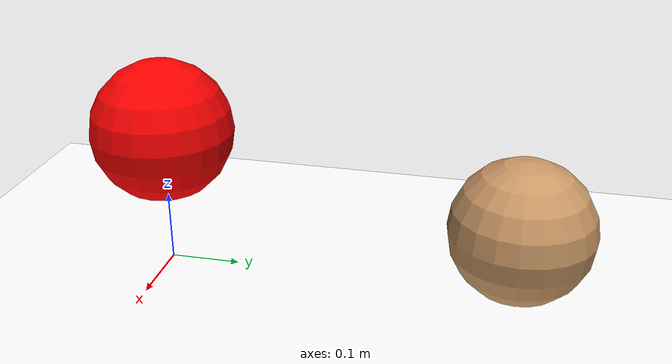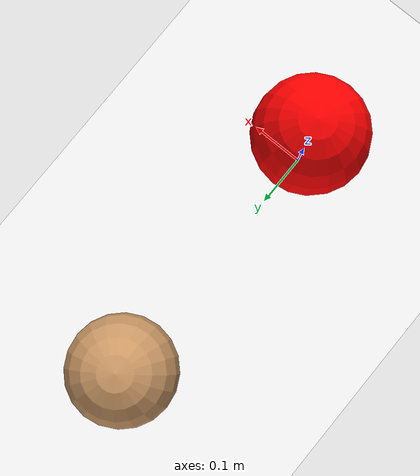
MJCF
<mujoco>
  <compiler inertiafromgeom="true" angle="degree" coordinate="local" />
  <option timestep="0.02" integrator="RK4" />
  <default>
    <joint limited="false" armature="0" damping="0" />
    <geom condim="3" conaffinity="0" margin="0" friction="1 0.5 0.5" rgba="0.8 0.6 0.4 1" density="100" />
  </default>
  <asset>
    <texture type="skybox" builtin="gradient" width="100" height="100" rgb1="1 1 1" rgb2="0 0 0" />
    <texture name="texgeom" type="cube" builtin="flat" mark="cross" width="127" height="1278" rgb1="0.8 0.6 0.4" rgb2="0.8 0.6 0.4" markrgb="1 1 1" random="0.01" />
    <texture name="texplane" type="2d" builtin="checker" rgb1="0 0 0" rgb2="0.8 0.8 0.8" width="100" height="100" />
    <material name='MatPlane' texture="texplane" shininess="1" texrepeat="30 30" specular="1"  reflectance="0.5" />
    <material name='geom' texture="texgeom" texuniform="true" />
    <material name="MatGnd" specular="0" shininess="0" reflectance="0" rgba='1 1 1 1'/>
  </asset>
  <worldbody>
    <light directional="true" cutoff="100" exponent="1" diffuse="1 1 1" specular=".1 .1 .1" pos="0 0 1.3" dir="-0 0 -1.3" />
    <!--geom name="gnd" material="MatGnd" type="plane" contype="0" conaffinity="0" pos="0 0 0" size="40 40 40"/-->
    <geom name='floor' pos='0 0 0' size='40 40 40' type='plane' conaffinity='1' rgba='1 1 1 1' condim='3' />
    <body name="torso" pos="0 0 0">
      <geom name="pointbody" type="sphere" size="0.1" pos="0 0.5 0.1" />
      <joint name='ballx' type='slide' axis='1 0 0' pos='0 0 0' />
      <joint name='bally' type='slide' axis='0 1 0' pos='0 0 0' />

    </body>

<body name="test" pos="0 0 0">
<site name="target" pos="0.0 0.0 0.2" size="0.1" rgba="1 0 0 1" type="sphere"></site>
</body>
  </worldbody>
  <actuator>
    <!-- Those are just dummy actuators for providing ranges -->
    <motor joint='ballx' ctrlrange="-2 2" ctrllimited="true" />
    <motor joint='bally' ctrlrange="-2 2" ctrllimited="true" />
  </actuator>
</mujoco>
